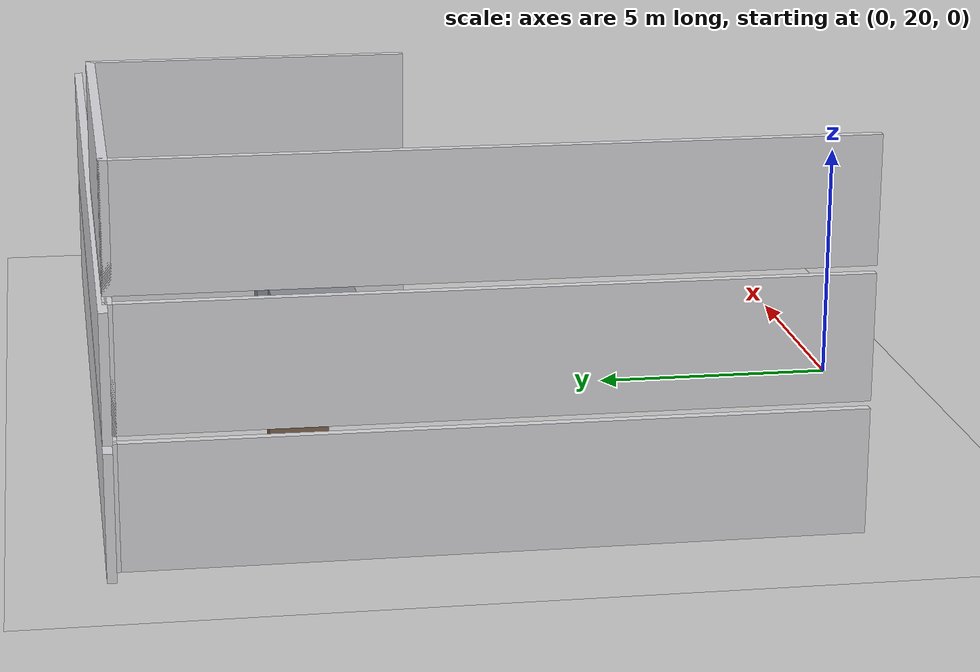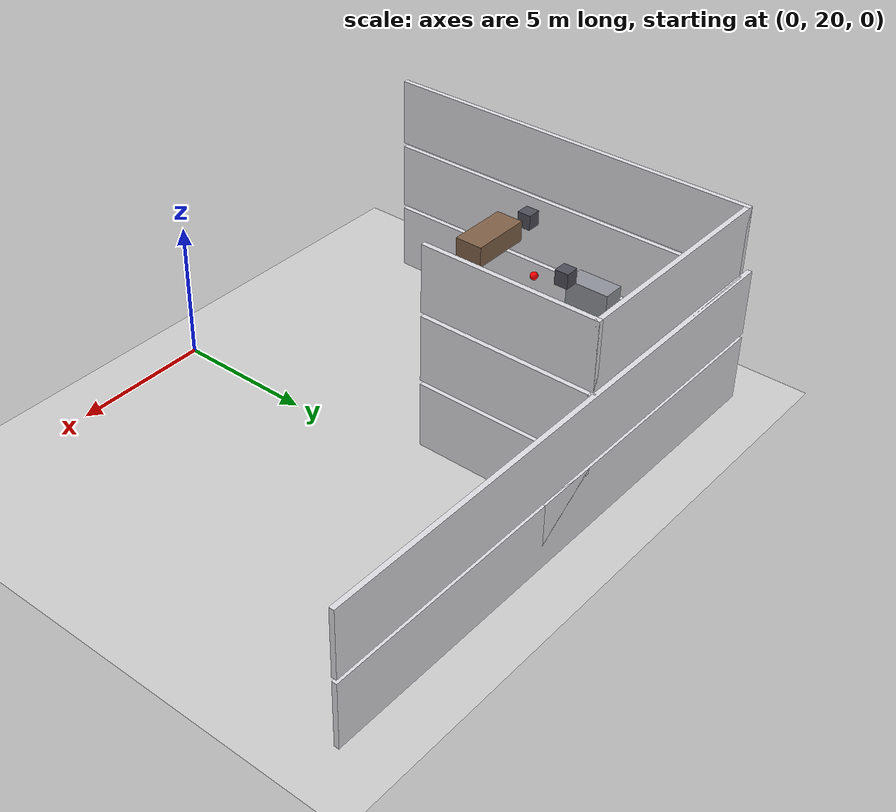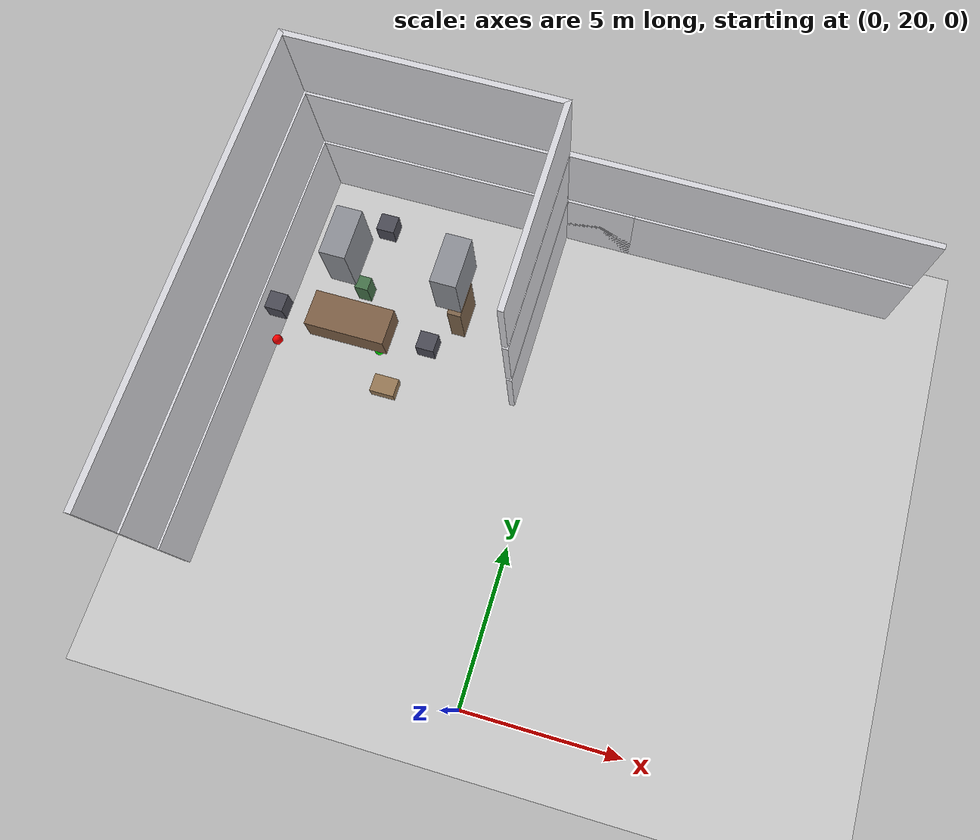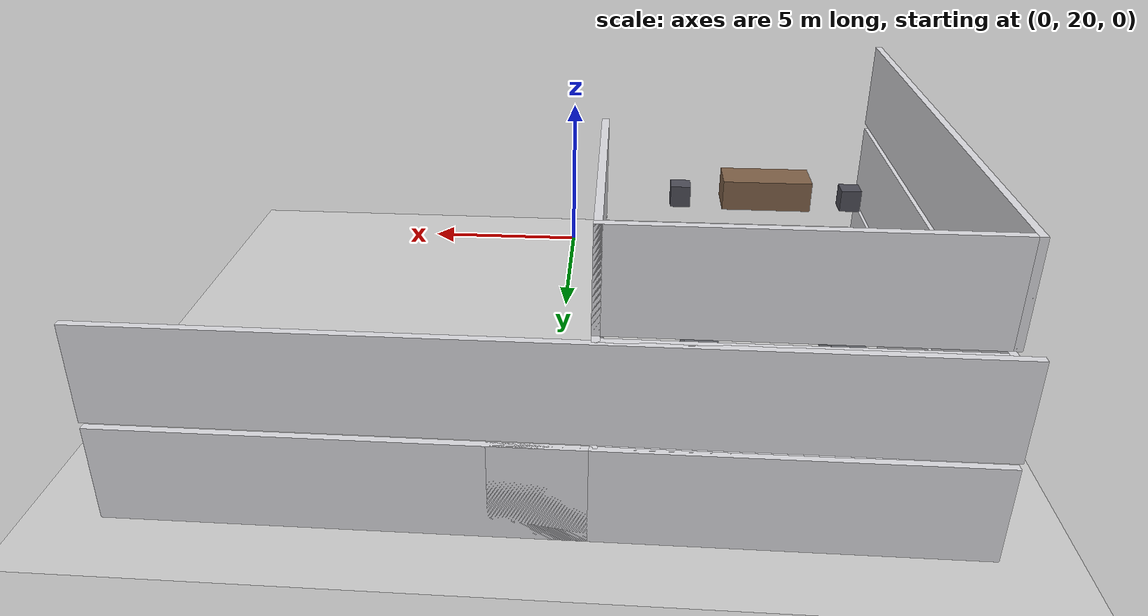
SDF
<sdf version="1.7">
 <world name="generated_world">
  <include><uri>model://sun</uri></include>
  <include><uri>model://ground_plane</uri></include>
  <model name="generated_building">
   <static>true</static>
   <link name="exterior_north_floor_0">
    <pose>0.0000 35.9100 1.2250 0.0000 0.0000 0.0000</pose>
    <collision name="exterior_north_floor_0_collision">
     <geometry><box><size>20.0000 0.1800 2.4500</size></box></geometry>
    </collision>
    <visual name="exterior_north_floor_0_visual">
     <geometry><box><size>20.0000 0.1800 2.4500</size></box></geometry>
     <material><ambient>0.86 0.86 0.88 1</ambient><diffuse>0.86 0.86 0.88 1</diffuse></material>
    </visual>
    <gravity>false</gravity>
   </link>
   <link name="north_end_wall_floor_0">
    <pose>0.0000 35.9100 1.2250 0.0000 0.0000 0.0000</pose>
    <collision name="north_end_wall_floor_0_collision">
     <geometry><box><size>2.2000 0.1800 2.4500</size></box></geometry>
    </collision>
    <visual name="north_end_wall_floor_0_visual">
     <geometry><box><size>2.2000 0.1800 2.4500</size></box></geometry>
     <material><ambient>0.86 0.86 0.88 1</ambient><diffuse>0.86 0.86 0.88 1</diffuse></material>
    </visual>
    <gravity>false</gravity>
   </link>
   <link name="floor_0_room_2_corridor_wall_upper">
    <pose>-1.1900 32.7025 1.2250 0.0000 0.0000 0.0000</pose>
    <collision name="floor_0_room_2_corridor_wall_upper_collision">
     <geometry><box><size>0.1800 6.4150 2.4500</size></box></geometry>
    </collision>
    <visual name="floor_0_room_2_corridor_wall_upper_visual">
     <geometry><box><size>0.1800 6.4150 2.4500</size></box></geometry>
     <material><ambient>0.86 0.86 0.88 1</ambient><diffuse>0.86 0.86 0.88 1</diffuse></material>
    </visual>
    <gravity>false</gravity>
   </link>
   <link name="floor_0_room_2_west_wall">
    <pose>-9.4100 28.8950 1.2250 0.0000 0.0000 0.0000</pose>
    <collision name="floor_0_room_2_west_wall_collision">
     <geometry><box><size>0.1800 14.0300 2.4500</size></box></geometry>
    </collision>
    <visual name="floor_0_room_2_west_wall_visual">
     <geometry><box><size>0.1800 14.0300 2.4500</size></box></geometry>
     <material><ambient>0.86 0.86 0.88 1</ambient><diffuse>0.86 0.86 0.88 1</diffuse></material>
    </visual>
    <gravity>false</gravity>
   </link>
   <link name="floor_0_room_2_north_wall">
    <pose>-5.3000 35.8200 1.2250 0.0000 0.0000 0.0000</pose>
    <collision name="floor_0_room_2_north_wall_collision">
     <geometry><box><size>8.4000 0.1800 2.4500</size></box></geometry>
    </collision>
    <visual name="floor_0_room_2_north_wall_visual">
     <geometry><box><size>8.4000 0.1800 2.4500</size></box></geometry>
     <material><ambient>0.86 0.86 0.88 1</ambient><diffuse>0.86 0.86 0.88 1</diffuse></material>
    </visual>
    <gravity>false</gravity>
   </link>
   <link name="floor_0_room_2_coffee_table">
    <pose>-5.3000 28.8950 0.2500 0.0000 0.0000 0.0000</pose>
    <collision name="floor_0_room_2_coffee_table_collision">
     <geometry><box><size>0.8000 0.6000 0.4000</size></box></geometry>
    </collision>
    <visual name="floor_0_room_2_coffee_table_visual">
     <geometry><box><size>0.8000 0.6000 0.4000</size></box></geometry>
     <material><ambient>0.60 0.48 0.34 1</ambient><diffuse>0.60 0.48 0.34 1</diffuse></material>
    </visual>
    <gravity>false</gravity>
   </link>
   <link name="floor_0_room_2_bookshelf">
    <pose>-3.6000 31.9525 0.8500 0.0000 0.0000 0.0000</pose>
    <collision name="floor_0_room_2_bookshelf_collision">
     <geometry><box><size>0.4500 1.2000 1.7000</size></box></geometry>
    </collision>
    <visual name="floor_0_room_2_bookshelf_visual">
     <geometry><box><size>0.4500 1.2000 1.7000</size></box></geometry>
     <material><ambient>0.50 0.40 0.30 1</ambient><diffuse>0.50 0.40 0.30 1</diffuse></material>
    </visual>
    <gravity>false</gravity>
   </link>
   <link name="floor_0_room_2_planter">
    <pose>-7.0000 31.9525 0.4500 0.0000 0.0000 0.0000</pose>
    <collision name="floor_0_room_2_planter_collision">
     <geometry><box><size>0.4500 0.4500 0.9000</size></box></geometry>
    </collision>
    <visual name="floor_0_room_2_planter_visual">
     <geometry><box><size>0.4500 0.4500 0.9000</size></box></geometry>
     <material><ambient>0.28 0.46 0.30 1</ambient><diffuse>0.28 0.46 0.30 1</diffuse></material>
    </visual>
    <gravity>false</gravity>
   </link>
   <link name="exterior_north_floor_1">
    <pose>0.0000 35.9100 3.8250 0.0000 0.0000 0.0000</pose>
    <collision name="exterior_north_floor_1_collision">
     <geometry><box><size>20.0000 0.1800 2.4500</size></box></geometry>
    </collision>
    <visual name="exterior_north_floor_1_visual">
     <geometry><box><size>20.0000 0.1800 2.4500</size></box></geometry>
     <material><ambient>0.86 0.86 0.88 1</ambient><diffuse>0.86 0.86 0.88 1</diffuse></material>
    </visual>
    <gravity>false</gravity>
   </link>
   <link name="floor_1_room_2_corridor_wall_upper">
    <pose>-1.1900 32.7025 3.8250 0.0000 0.0000 0.0000</pose>
    <collision name="floor_1_room_2_corridor_wall_upper_collision">
     <geometry><box><size>0.1800 6.4150 2.4500</size></box></geometry>
    </collision>
    <visual name="floor_1_room_2_corridor_wall_upper_visual">
     <geometry><box><size>0.1800 6.4150 2.4500</size></box></geometry>
     <material><ambient>0.86 0.86 0.88 1</ambient><diffuse>0.86 0.86 0.88 1</diffuse></material>
    </visual>
    <gravity>false</gravity>
   </link>
   <link name="floor_1_room_2_west_wall">
    <pose>-9.4100 28.8950 3.8250 0.0000 0.0000 0.0000</pose>
    <collision name="floor_1_room_2_west_wall_collision">
     <geometry><box><size>0.1800 14.0300 2.4500</size></box></geometry>
    </collision>
    <visual name="floor_1_room_2_west_wall_visual">
     <geometry><box><size>0.1800 14.0300 2.4500</size></box></geometry>
     <material><ambient>0.86 0.86 0.88 1</ambient><diffuse>0.86 0.86 0.88 1</diffuse></material>
    </visual>
    <gravity>false</gravity>
   </link>
   <link name="floor_1_room_2_north_wall">
    <pose>-5.3000 35.8200 3.8250 0.0000 0.0000 0.0000</pose>
    <collision name="floor_1_room_2_north_wall_collision">
     <geometry><box><size>8.4000 0.1800 2.4500</size></box></geometry>
    </collision>
    <visual name="floor_1_room_2_north_wall_visual">
     <geometry><box><size>8.4000 0.1800 2.4500</size></box></geometry>
     <material><ambient>0.86 0.86 0.88 1</ambient><diffuse>0.86 0.86 0.88 1</diffuse></material>
    </visual>
    <gravity>false</gravity>
   </link>
   <link name="floor_1_room_2_rack_a">
    <pose>-7.0000 31.9525 3.5000 0.0000 0.0000 0.0000</pose>
    <collision name="floor_1_room_2_rack_a_collision">
     <geometry><box><size>0.8000 1.6000 1.8000</size></box></geometry>
    </collision>
    <visual name="floor_1_room_2_rack_a_visual">
     <geometry><box><size>0.8000 1.6000 1.8000</size></box></geometry>
     <material><ambient>0.56 0.57 0.60 1</ambient><diffuse>0.56 0.57 0.60 1</diffuse></material>
    </visual>
    <gravity>false</gravity>
   </link>
   <link name="floor_1_room_2_rack_b">
    <pose>-3.6000 31.9525 3.5000 0.0000 0.0000 0.0000</pose>
    <collision name="floor_1_room_2_rack_b_collision">
     <geometry><box><size>0.8000 1.6000 1.8000</size></box></geometry>
    </collision>
    <visual name="floor_1_room_2_rack_b_visual">
     <geometry><box><size>0.8000 1.6000 1.8000</size></box></geometry>
     <material><ambient>0.56 0.57 0.60 1</ambient><diffuse>0.56 0.57 0.60 1</diffuse></material>
    </visual>
    <gravity>false</gravity>
   </link>
   <link name="floor_2_room_2_corridor_wall_upper">
    <pose>-1.1900 32.7025 6.4250 0.0000 0.0000 0.0000</pose>
    <collision name="floor_2_room_2_corridor_wall_upper_collision">
     <geometry><box><size>0.1800 6.4150 2.4500</size></box></geometry>
    </collision>
    <visual name="floor_2_room_2_corridor_wall_upper_visual">
     <geometry><box><size>0.1800 6.4150 2.4500</size></box></geometry>
     <material><ambient>0.86 0.86 0.88 1</ambient><diffuse>0.86 0.86 0.88 1</diffuse></material>
    </visual>
    <gravity>false</gravity>
   </link>
   <link name="floor_2_room_2_west_wall">
    <pose>-9.4100 28.8950 6.4250 0.0000 0.0000 0.0000</pose>
    <collision name="floor_2_room_2_west_wall_collision">
     <geometry><box><size>0.1800 14.0300 2.4500</size></box></geometry>
    </collision>
    <visual name="floor_2_room_2_west_wall_visual">
     <geometry><box><size>0.1800 14.0300 2.4500</size></box></geometry>
     <material><ambient>0.86 0.86 0.88 1</ambient><diffuse>0.86 0.86 0.88 1</diffuse></material>
    </visual>
    <gravity>false</gravity>
   </link>
   <link name="floor_2_room_2_north_wall">
    <pose>-5.3000 35.8200 6.4250 0.0000 0.0000 0.0000</pose>
    <collision name="floor_2_room_2_north_wall_collision">
     <geometry><box><size>8.4000 0.1800 2.4500</size></box></geometry>
    </collision>
    <visual name="floor_2_room_2_north_wall_visual">
     <geometry><box><size>8.4000 0.1800 2.4500</size></box></geometry>
     <material><ambient>0.86 0.86 0.88 1</ambient><diffuse>0.86 0.86 0.88 1</diffuse></material>
    </visual>
    <gravity>false</gravity>
   </link>
   <link name="floor_2_room_2_table">
    <pose>-5.3000 28.8950 5.6500 0.0000 0.0000 0.0000</pose>
    <collision name="floor_2_room_2_table_collision">
     <geometry><box><size>2.2000 1.0000 0.7500</size></box></geometry>
    </collision>
    <visual name="floor_2_room_2_table_visual">
     <geometry><box><size>2.2000 1.0000 0.7500</size></box></geometry>
     <material><ambient>0.50 0.38 0.28 1</ambient><diffuse>0.50 0.38 0.28 1</diffuse></material>
    </visual>
    <gravity>false</gravity>
   </link>
   <link name="floor_2_room_2_chair_north">
    <pose>-5.3000 31.9525 5.4800 0.0000 0.0000 0.0000</pose>
    <collision name="floor_2_room_2_chair_north_collision">
     <geometry><box><size>0.5000 0.5000 0.5500</size></box></geometry>
    </collision>
    <visual name="floor_2_room_2_chair_north_visual">
     <geometry><box><size>0.5000 0.5000 0.5500</size></box></geometry>
     <material><ambient>0.30 0.30 0.34 1</ambient><diffuse>0.30 0.30 0.34 1</diffuse></material>
    </visual>
    <gravity>false</gravity>
   </link>
   <link name="floor_2_room_2_chair_west">
    <pose>-7.4500 28.8950 5.4800 0.0000 0.0000 1.5700</pose>
    <collision name="floor_2_room_2_chair_west_collision">
     <geometry><box><size>0.5000 0.5000 0.5500</size></box></geometry>
    </collision>
    <visual name="floor_2_room_2_chair_west_visual">
     <geometry><box><size>0.5000 0.5000 0.5500</size></box></geometry>
     <material><ambient>0.30 0.30 0.34 1</ambient><diffuse>0.30 0.30 0.34 1</diffuse></material>
    </visual>
    <gravity>false</gravity>
   </link>
   <link name="floor_2_room_2_chair_east">
    <pose>-3.1500 28.8950 5.4800 0.0000 0.0000 1.5700</pose>
    <collision name="floor_2_room_2_chair_east_collision">
     <geometry><box><size>0.5000 0.5000 0.5500</size></box></geometry>
    </collision>
    <visual name="floor_2_room_2_chair_east_visual">
     <geometry><box><size>0.5000 0.5000 0.5500</size></box></geometry>
     <material><ambient>0.30 0.30 0.34 1</ambient><diffuse>0.30 0.30 0.34 1</diffuse></material>
    </visual>
    <gravity>false</gravity>
   </link>
  </model>
  <model name="distractor_green_sphere_03">
   <static>true</static>
   <pose>-5.904841 30.070099 0.150000 0.000000 0.000000 0.000000</pose>
   <link name="link">
    <collision name="collision"><geometry><sphere><radius>0.150</radius></sphere></geometry></collision>
    <visual name="visual">
     <geometry><sphere><radius>0.150</radius></sphere></geometry>
     <material><ambient>0.0 1.0 0.0 1.0</ambient><diffuse>0.0 1.0 0.0 1.0</diffuse></material>
    </visual>
   </link>
  </model>
  <model name="danger_red_sphere_03">
   <static>true</static>
   <pose>-8.227699 28.740519 2.750000 0.000000 0.000000 0.000000</pose>
   <link name="link">
    <collision name="collision"><geometry><sphere><radius>0.150</radius></sphere></geometry></collision>
    <visual name="visual">
     <geometry><sphere><radius>0.150</radius></sphere></geometry>
     <material><ambient>1.0 0.0 0.0 1.0</ambient><diffuse>1.0 0.0 0.0 1.0</diffuse></material>
    </visual>
   </link>
  </model>
 </world>
</sdf>
